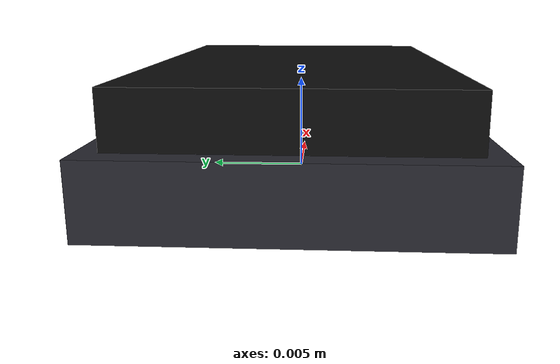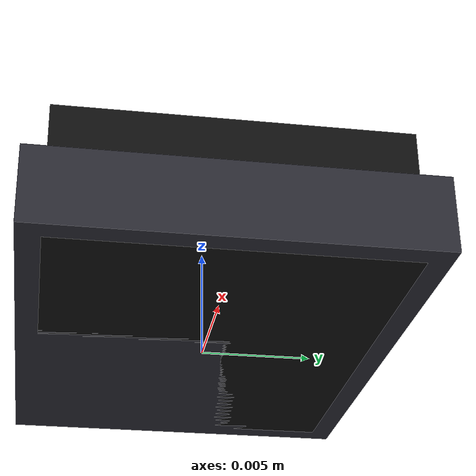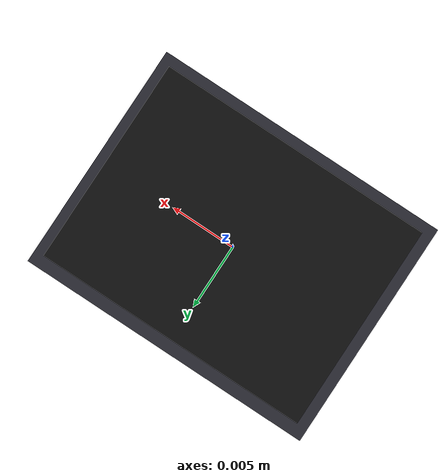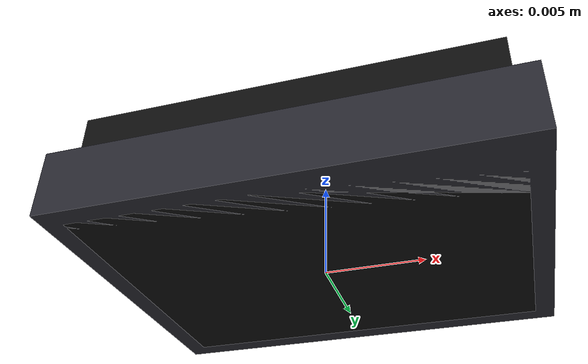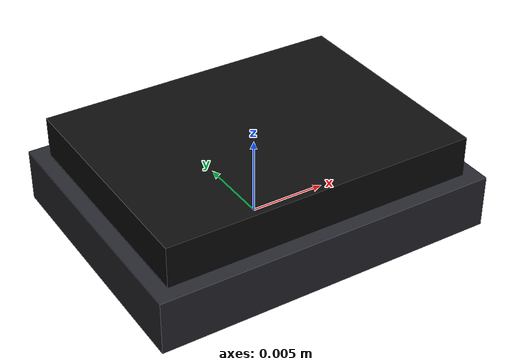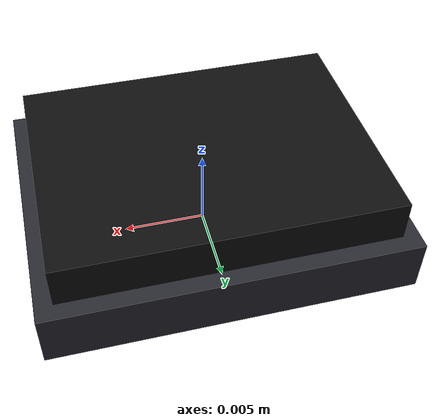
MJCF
<mujoco model="Switch_33">
  <asset>
    <material name="Switch_33_bezel" rgba="0.15 0.15 0.18 1"/>
    <material name="Switch_33_button" rgba="0.05 0.05 0.05 1"/>
  </asset>
  <worldbody>
    <body name="Switch_33">
      <geom name="Switch_33_bezel" type="box"
            pos="0 0 0.0017" size="0.011 0.0085 0.0017"
            material="Switch_33_bezel"/>
      <geom name="Switch_33_button" type="box"
            pos="0 0 0.003" size="0.01 0.0075 0.003"
            material="Switch_33_button"/>
    </body>
  </worldbody>
</mujoco>
